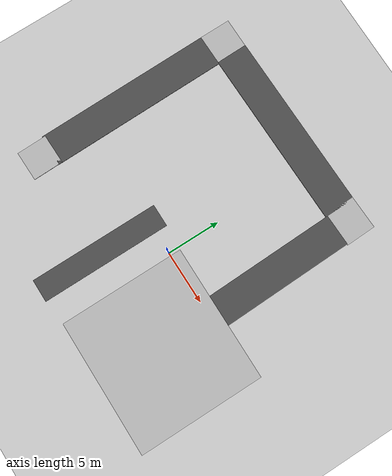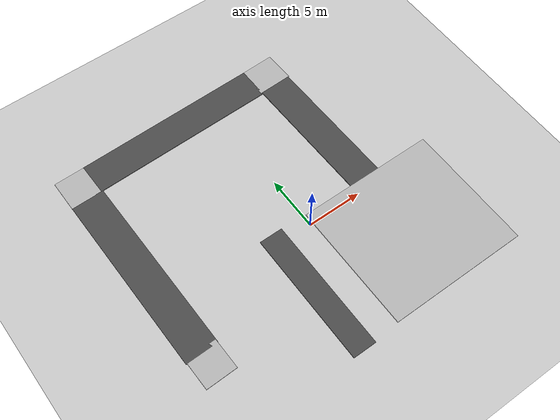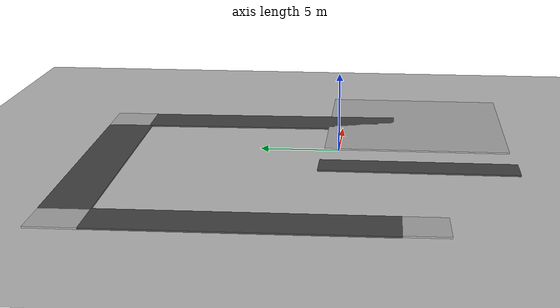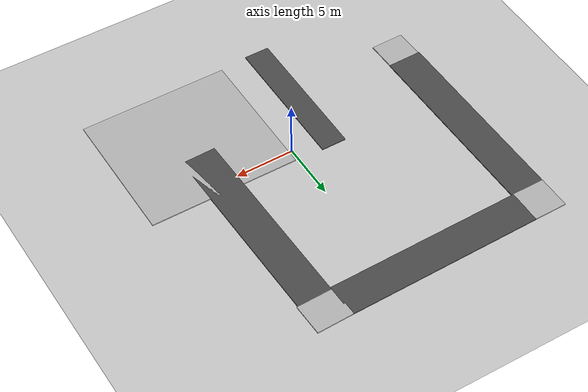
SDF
<sdf version="1.7">
 <world name="default">
  <model name="ground_plane">
   <static>1</static>
   <link name="link">
    <collision name="collision">
     <geometry><plane><normal>0 0 1</normal><size>100 100</size></plane></geometry>
     <surface>
      <contact><collide_bitmask>65535</collide_bitmask></contact>
      <friction><ode><mu>100</mu><mu2>50</mu2></ode></friction>
     </surface>
    </collision>
    <visual name="visual">
     <cast_shadows>0</cast_shadows>
     <geometry><plane><normal>0 0 1</normal><size>100 100</size></plane></geometry>
     <material>
      <script><uri>file://media/materials/scripts/gazebo.material</uri><name>Gazebo/Grey</name></script>
     </material>
    </visual>
   </link>
  </model>
  <light name="sun" type="directional">
   <pose>0 0 10 0 -0 0</pose>
   <diffuse>0.8 0.8 0.8 1</diffuse>
   <specular>0.2 0.2 0.2 1</specular>
   <attenuation>
    <range>1000</range>
    <constant>0.9</constant>
    <linear>0.01</linear>
    <quadratic>0.001</quadratic>
   </attenuation>
   <direction>-0.5 0.1 -0.9</direction>
   <spot><inner_angle>0</inner_angle><outer_angle>0</outer_angle><falloff>0</falloff></spot>
  </light>
  <scene><shadows>0</shadows><ambient>0.4 0.4 0.4 1</ambient><background>0.7 0.7 0.7 1</background></scene>
  <physics type="ode">
   <real_time_update_rate>1000</real_time_update_rate>
   <max_step_size>0.001</max_step_size>
   <real_time_factor>1</real_time_factor>
   <ode>
    <solver>
     <type>quick</type>
     <iters>150</iters>
     <precon_iters>0</precon_iters>
     <sor>1.4</sor>
     <use_dynamic_moi_rescaling>1</use_dynamic_moi_rescaling>
    </solver>
    <constraints>
     <cfm>1e-05</cfm>
     <erp>0.2</erp>
     <contact_max_correcting_vel>2000</contact_max_correcting_vel>
     <contact_surface_layer>0.01</contact_surface_layer>
    </constraints>
   </ode>
  </physics>
  <gravity>0 0 -9.8</gravity>
  <magnetic_field>6e-06 2.3e-05 -4.2e-05</magnetic_field>
  <atmosphere type="adiabatic"/>
  <audio><device>default</device></audio>
  <spherical_coordinates>
   <surface_model>EARTH_WGS84</surface_model>
   <latitude_deg>0</latitude_deg>
   <longitude_deg>0</longitude_deg>
   <elevation>0</elevation>
   <heading_deg>0</heading_deg>
  </spherical_coordinates>
  <model name="road_plane_without_marks">
   <static>1</static>
   <link name="link">
    <collision name="collision"><geometry><box><size>2.13609 12.1815 0.1</size></box></geometry></collision>
    <visual name="visual">
     <cast_shadows>0</cast_shadows>
     <geometry><box><size>2.13609 12.1815 0.1</size></box></geometry>
     <material>
      <script>
       <uri>model://road_plane_without_marks/materials/scripts</uri>
       <uri>model://road_plane_without_marks/materials/textures</uri>
       <name>vrc/road_no_m</name>
      </script>
     </material>
    </visual>
   </link>
   <pose>-3.21232 -4.98374 0 0 -0 0</pose>
  </model>
  <model name="road_plane_without_marks_clone">
   <static>1</static>
   <link name="link">
    <collision name="collision"><geometry><box><size>16.853 2.9553 0.1</size></box></geometry></collision>
    <visual name="visual">
     <cast_shadows>0</cast_shadows>
     <geometry><box><size>16.853 2.9553 0.1</size></box></geometry>
     <material>
      <script>
       <uri>model://road_plane_without_marks/materials/scripts</uri>
       <uri>model://road_plane_without_marks/materials/textures</uri>
       <name>vrc/road_no_m</name>
      </script>
     </material>
    </visual>
   </link>
   <pose>-3.7954 14.4868 0 0 -0 0.016924</pose>
  </model>
  <model name="road_plane_without_marks_clone_0">
   <static>1</static>
   <link name="link">
    <collision name="collision"><geometry><box><size>16.853 2.9553 0.1</size></box></geometry></collision>
    <visual name="visual">
     <cast_shadows>0</cast_shadows>
     <geometry><box><size>16.853 2.9553 0.1</size></box></geometry>
     <material>
      <script>
       <uri>model://road_plane_without_marks/materials/scripts</uri>
       <uri>model://road_plane_without_marks/materials/textures</uri>
       <name>vrc/road_no_m</name>
      </script>
     </material>
    </visual>
   </link>
   <pose>6.34287 4.9479 0 0 0 -1.54558</pose>
  </model>
  <model name="road_plane_without_marks_clone_1">
   <static>1</static>
   <link name="link">
    <collision name="collision"><geometry><box><size>16.853 2.9553 0.1</size></box></geometry></collision>
    <visual name="visual">
     <cast_shadows>0</cast_shadows>
     <geometry><box><size>16.853 2.9553 0.1</size></box></geometry>
     <material>
      <script>
       <uri>model://road_plane_without_marks/materials/scripts</uri>
       <uri>model://road_plane_without_marks/materials/textures</uri>
       <name>vrc/road_no_m</name>
      </script>
     </material>
    </visual>
   </link>
   <pose>-13.41 4.44232 0 0 0 -1.55699</pose>
  </model>
  <model name="road_diag">
   <static>1</static>
   <link name="link">
    <collision name="collision"><geometry><box><size>12.7323 11.7716 0.1</size></box></geometry></collision>
    <visual name="visual">
     <cast_shadows>0</cast_shadows>
     <geometry><box><size>12.7323 11.7716 0.1</size></box></geometry>
     <material>
      <script>
       <uri>model://road_diag/materials/scripts</uri>
       <uri>model://road_diag/materials/textures</uri>
       <name>vrc/diag</name>
      </script>
     </material>
    </visual>
   </link>
   <pose>6.61734 -4.92813 0 0 -0 0</pose>
  </model>
  <model name="road_diag_clone">
   <static>1</static>
   <link name="link">
    <collision name="collision"><geometry><box><size>2.82747 3.16977 0.1</size></box></geometry></collision>
    <visual name="visual">
     <cast_shadows>0</cast_shadows>
     <geometry><box><size>2.82747 3.16977 0.1</size></box></geometry>
     <material>
      <script>
       <uri>model://road_diag/materials/scripts</uri>
       <uri>model://road_diag/materials/textures</uri>
       <name>vrc/diag</name>
      </script>
     </material>
    </visual>
   </link>
   <pose>6.07594 14.7394 0 0 -0 1.60304</pose>
  </model>
  <model name="road_diag_clone_clone">
   <static>1</static>
   <link name="link">
    <collision name="collision"><geometry><box><size>2.82747 2.95061 0.1</size></box></geometry></collision>
    <visual name="visual">
     <cast_shadows>0</cast_shadows>
     <geometry><box><size>2.82747 2.95061 0.1</size></box></geometry>
     <material>
      <script>
       <uri>model://road_diag/materials/scripts</uri>
       <uri>model://road_diag/materials/textures</uri>
       <name>vrc/diag</name>
      </script>
     </material>
    </visual>
   </link>
   <pose>-13.6101 14.319 0 0 0 -3.13334</pose>
  </model>
  <model name="road_diag_clone_clone_0">
   <static>1</static>
   <link name="link">
    <collision name="collision"><geometry><box><size>2.84455 2.83434 0.1</size></box></geometry></collision>
    <visual name="visual">
     <cast_shadows>0</cast_shadows>
     <geometry><box><size>2.84455 2.83434 0.1</size></box></geometry>
     <material>
      <script>
       <uri>model://road_diag/materials/scripts</uri>
       <uri>model://road_diag/materials/textures</uri>
       <name>vrc/diag</name>
      </script>
     </material>
    </visual>
   </link>
   <pose>-13.237 -5.09162 0 0 0 -1.55055</pose>
  </model>
 </world>
</sdf>
